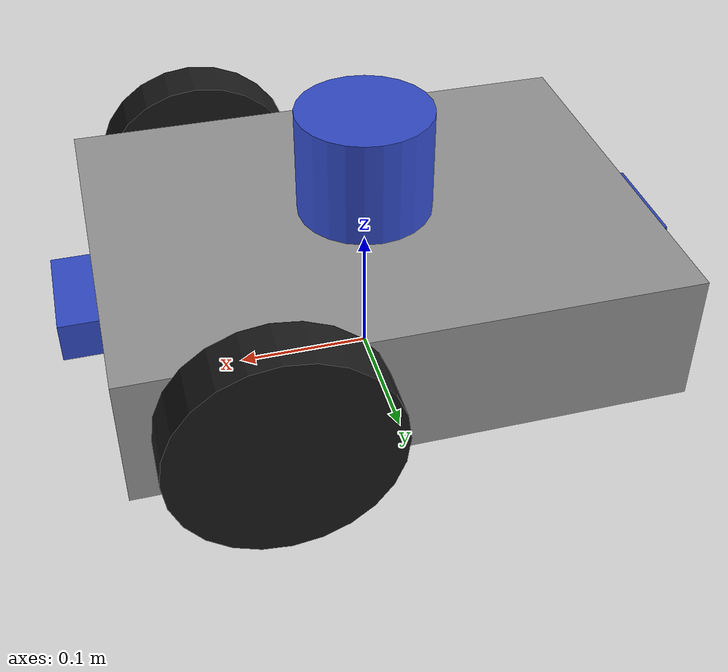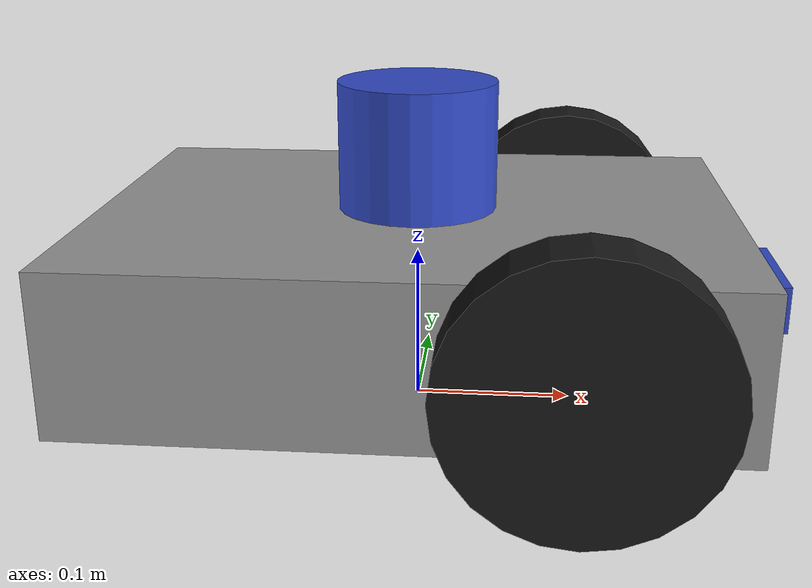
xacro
<?xml version="1.0"?>
<robot xmlns:xacro="http://www.ros.org/wiki/xacro" name="diffdrive_bot">

  <!-- Robot dimensions and masses -->
  <xacro:property name="chassis_length" value="0.40" />
  <xacro:property name="chassis_width" value="0.30" />
  <xacro:property name="chassis_height" value="0.10" />
  <xacro:property name="chassis_mass" value="5.0" />
  <xacro:property name="wheel_radius" value="0.08" />
  <xacro:property name="wheel_width" value="0.04" />
  <xacro:property name="wheel_mass" value="0.5" />
  <xacro:property name="wheel_separation" value="0.34" />
  <xacro:property name="wheel_x" value="0.10" />
  <xacro:property name="caster_radius" value="0.04" />
  <xacro:property name="caster_mass" value="0.2" />
  <xacro:property name="lidar_radius" value="0.05" />
  <xacro:property name="lidar_height" value="0.08" />
  <xacro:property name="lidar_mass" value="0.2" />
  <xacro:property name="camera_size" value="0.03 0.08 0.03" />
  <xacro:property name="camera_mass" value="0.1" />

  <!-- Depth camera properties -->
  <xacro:property name="depth_camera_size" value="0.03 0.08 0.03" />
  <xacro:property name="depth_camera_mass" value="0.1" />

  <!-- Inertia calculations -->
  <xacro:macro name="box_inertia" params="m x y z">
    <inertia ixx="${m*(y*y+z*z)/12}" ixy="0" ixz="0"
             iyy="${m*(x*x+z*z)/12}" iyz="0"
             izz="${m*(x*x+y*y)/12}" />
  </xacro:macro>

  <xacro:macro name="cylinder_inertia" params="m r l">
    <inertia ixx="${m*(3*r*r+l*l)/12}" ixy="0" ixz="0"
             iyy="${m*(3*r*r+l*l)/12}" iyz="0"
             izz="${m*r*r/2}" />
  </xacro:macro>

  <xacro:macro name="sphere_inertia" params="m r">
    <inertia ixx="${2*m*r*r/5}" ixy="0" ixz="0"
             iyy="${2*m*r*r/5}" iyz="0"
             izz="${2*m*r*r/5}" />
  </xacro:macro>

  <!-- Materials -->
  <material name="grey">
    <color rgba="0.6 0.6 0.6 1" />
  </material>
  <material name="black">
    <color rgba="0.1 0.1 0.1 1" />
  </material>
  <material name="blue">
    <color rgba="0.2 0.3 0.8 1" />
  </material>

  <!-- Chassis -->
  <link name="base_footprint" />

  <link name="base_link">
    <visual>
      <geometry>
        <box size="${chassis_length} ${chassis_width} ${chassis_height}" />
      </geometry>
      <material name="grey" />
    </visual>
    <collision>
      <geometry>
        <box size="${chassis_length} ${chassis_width} ${chassis_height}" />
      </geometry>
    </collision>
    <inertial>
      <mass value="${chassis_mass}" />
      <xacro:box_inertia m="${chassis_mass}" x="${chassis_length}"
                         y="${chassis_width}" z="${chassis_height}" />
    </inertial>
  </link>

  <joint name="base_joint" type="fixed">
    <parent link="base_footprint" />
    <child link="base_link" />
    <origin xyz="0 0 ${wheel_radius}" />
  </joint>

  <!-- Driven wheels -->
  <xacro:macro name="wheel" params="side y">
    <link name="${side}_wheel">
      <visual>
        <origin rpy="${pi/2} 0 0" />
        <geometry>
          <cylinder radius="${wheel_radius}" length="${wheel_width}" />
        </geometry>
        <material name="black" />
      </visual>
      <collision>
        <origin rpy="${pi/2} 0 0" />
        <geometry>
          <cylinder radius="${wheel_radius}" length="${wheel_width}" />
        </geometry>
      </collision>
      <inertial>
        <origin rpy="${pi/2} 0 0" />
        <mass value="${wheel_mass}" />
        <xacro:cylinder_inertia m="${wheel_mass}" r="${wheel_radius}"
                                l="${wheel_width}" />
      </inertial>
    </link>

    <joint name="${side}_wheel_joint" type="continuous">
      <parent link="base_link" />
      <child link="${side}_wheel" />
      <origin xyz="${wheel_x} ${y} 0" />
      <axis xyz="0 1 0" />
    </joint>
  </xacro:macro>

  <xacro:wheel side="left" y="${wheel_separation/2}" />
  <xacro:wheel side="right" y="${-wheel_separation/2}" />

  <!-- Rear caster -->
  <link name="caster">
    <visual>
      <geometry>
        <sphere radius="${caster_radius}" />
      </geometry>
      <material name="black" />
    </visual>
    <collision>
      <geometry>
        <sphere radius="${caster_radius}" />
      </geometry>
    </collision>
    <inertial>
      <mass value="${caster_mass}" />
      <xacro:sphere_inertia m="${caster_mass}" r="${caster_radius}" />
    </inertial>
  </link>

  <joint name="caster_joint" type="fixed">
    <parent link="base_link" />
    <child link="caster" />
    <origin xyz="${-chassis_length/2 + caster_radius} 0 ${caster_radius - wheel_radius}" />
  </joint>

  <!-- 2D LiDAR -->
  <link name="lidar_link">
    <visual>
      <geometry>
        <cylinder radius="${lidar_radius}" length="${lidar_height}" />
      </geometry>
      <material name="blue" />
    </visual>
    <collision>
      <geometry>
        <cylinder radius="${lidar_radius}" length="${lidar_height}" />
      </geometry>
    </collision>
    <inertial>
      <mass value="${lidar_mass}" />
      <xacro:cylinder_inertia m="${lidar_mass}" r="${lidar_radius}" l="${lidar_height}" />
    </inertial>
  </link>

  <joint name="lidar_joint" type="fixed">
    <parent link="base_link" />
    <child link="lidar_link" />
    <origin xyz="0 0 ${chassis_height/2 + lidar_height/2}" />
  </joint>

  <!-- Front camera -->
  <link name="camera_link">
    <visual>
      <geometry>
        <box size="${camera_size}" />
      </geometry>
      <material name="blue" />
    </visual>
    <collision>
      <geometry>
        <box size="${camera_size}" />
      </geometry>
    </collision>
    <inertial>
      <mass value="${camera_mass}" />
      <xacro:box_inertia m="${camera_mass}" x="0.03" y="0.08" z="0.03" />
    </inertial>
  </link>

  <joint name="camera_joint" type="fixed">
    <parent link="base_link" />
    <child link="camera_link" />
    <origin xyz="${chassis_length/2 + 0.015} 0 0" />
  </joint>

  <!-- Rear depth camera -->
  <link name="depth_camera_link">
    <visual>
      <geometry>
        <box size="${depth_camera_size}" />
      </geometry>
      <material name="blue" />
    </visual>
    <collision>
      <geometry>
        <box size="${depth_camera_size}" />
      </geometry>
    </collision>
    <inertial>
      <mass value="${depth_camera_mass}" />
      <xacro:box_inertia m="${depth_camera_mass}" x="0.03" y="0.08" z="0.03" />
    </inertial>
  </link>

  <joint name="depth_camera_joint" type="fixed">
    <parent link="base_link" />
    <child link="depth_camera_link" />
    <origin xyz="${-chassis_length/2 - 0.015} 0 0" rpy="0 0 ${pi}" />
  </joint>

  <!-- IMU at the centre of the chassis -->
  <link name="imu_link">
    <visual>
      <geometry>
        <box size="0.02 0.02 0.02" />
      </geometry>
      <material name="black" />
    </visual>
    <collision>
      <geometry>
        <box size="0.02 0.02 0.02" />
      </geometry>
    </collision>
    <inertial>
      <mass value="0.01" />
      <xacro:box_inertia m="0.01" x="0.02" y="0.02" z="0.02" />
    </inertial>
  </link>

  <joint name="imu_joint" type="fixed">
    <parent link="base_link" />
    <child link="imu_link" />
    <origin xyz="0 0 0" />
  </joint>

  <!-- Frictionless caster -->
  <gazebo reference="caster">
    <collision>
      <surface>
        <friction>
          <ode>
            <mu>0.0</mu>
            <mu2>0.0</mu2>
          </ode>
        </friction>
      </surface>
    </collision>
  </gazebo>

  <!-- LiDAR sensor -->
  <gazebo reference="lidar_link">
    <sensor name="lidar" type="gpu_lidar">
      <topic>/scan</topic>
      <gz_frame_id>lidar_link</gz_frame_id>
      <update_rate>10</update_rate>
      <always_on>true</always_on>
      <visualize>true</visualize>
      <lidar>
        <scan>
          <horizontal>
            <samples>360</samples>
            <resolution>1</resolution>
            <min_angle>-3.14159</min_angle>
            <max_angle>3.14159</max_angle>
          </horizontal>
        </scan>
        <range>
          <min>0.12</min>
          <max>10.0</max>
          <resolution>0.01</resolution>
        </range>
      </lidar>
    </sensor>
  </gazebo>

  <!-- RGB camera sensor -->
  <gazebo reference="camera_link">
    <sensor name="camera" type="camera">
      <topic>/camera/image</topic>
      <gz_frame_id>camera_link</gz_frame_id>
      <update_rate>15</update_rate>
      <always_on>true</always_on>
      <camera>
        <camera_info_topic>/camera/camera_info</camera_info_topic>
        <horizontal_fov>1.047</horizontal_fov>
        <image>
          <width>640</width>
          <height>480</height>
          <format>R8G8B8</format>
        </image>
        <clip>
          <near>0.05</near>
          <far>50</far>
        </clip>
      </camera>
    </sensor>
  </gazebo>

  <!-- Depth camera sensor -->
  <gazebo reference="depth_camera_link">
    <sensor name="depth_camera" type="depth_camera">
      <topic>/depth_camera</topic>
      <gz_frame_id>depth_camera_link</gz_frame_id>
      <update_rate>10</update_rate>
      <always_on>true</always_on>
      <visualize>true</visualize>
      <camera>
        <camera_info_topic>/depth_camera/camera_info</camera_info_topic>
        <horizontal_fov>1.047</horizontal_fov>
        <image>
          <width>320</width>
          <height>240</height>
          <format>R_FLOAT32</format>
        </image>
        <clip>
          <near>0.1</near>
          <far>10</far>
        </clip>
      </camera>
    </sensor>
  </gazebo>

  <!-- IMU sensor -->
  <gazebo reference="imu_link">
    <sensor name="imu_sensor" type="imu">
      <topic>/imu</topic>
      <gz_frame_id>imu_link</gz_frame_id>
      <update_rate>50</update_rate>
      <always_on>true</always_on>
      <visualize>false</visualize>
      <imu>
        <angular_velocity>
          <x>
            <noise type="gaussian">
              <mean>0.0</mean>
              <stddev>0.0002</stddev>
            </noise>
          </x>
          <y>
            <noise type="gaussian">
              <mean>0.0</mean>
              <stddev>0.0002</stddev>
            </noise>
          </y>
          <z>
            <noise type="gaussian">
              <mean>0.0</mean>
              <stddev>0.0002</stddev>
            </noise>
          </z>
        </angular_velocity>
        <linear_acceleration>
          <x>
            <noise type="gaussian">
              <mean>0.0</mean>
              <stddev>0.017</stddev>
            </noise>
          </x>
          <y>
            <noise type="gaussian">
              <mean>0.0</mean>
              <stddev>0.017</stddev>
            </noise>
          </y>
          <z>
            <noise type="gaussian">
              <mean>0.0</mean>
              <stddev>0.017</stddev>
            </noise>
          </z>
        </linear_acceleration>
      </imu>
    </sensor>
  </gazebo>

  <!-- Gazebo plugins -->
  <gazebo>
    <plugin filename="gz-sim-diff-drive-system" name="gz::sim::systems::DiffDrive">
      <left_joint>left_wheel_joint</left_joint>
      <right_joint>right_wheel_joint</right_joint>
      <wheel_separation>${wheel_separation}</wheel_separation>
      <wheel_radius>${wheel_radius}</wheel_radius>
      <max_linear_acceleration>1.0</max_linear_acceleration>
      <max_velocity>1.0</max_velocity>
      <topic>/cmd_vel</topic>
      <odom_topic>/odom</odom_topic>
      <tf_topic>/tf</tf_topic>
      <frame_id>odom</frame_id>
      <child_frame_id>base_footprint</child_frame_id>
      <odom_publish_frequency>20</odom_publish_frequency>
    </plugin>

    <plugin filename="gz-sim-joint-state-publisher-system" name="gz::sim::systems::JointStatePublisher">
      <topic>/joint_states</topic>
    </plugin>

    <!-- IMU system plugin -->
    <plugin filename="gz-sim-imu-system" name="gz::sim::systems::Imu" />
  </gazebo>

</robot>
